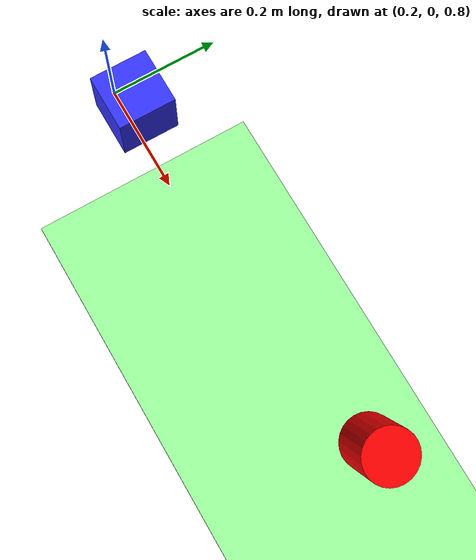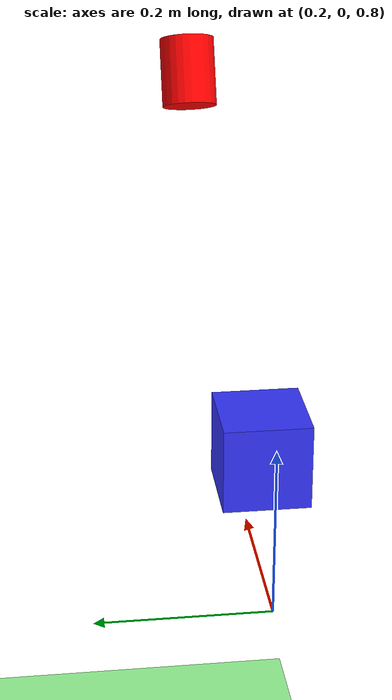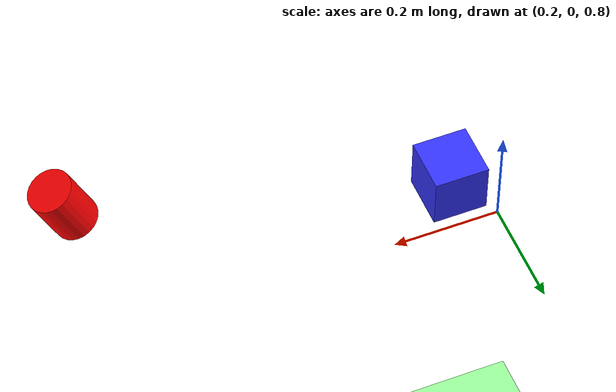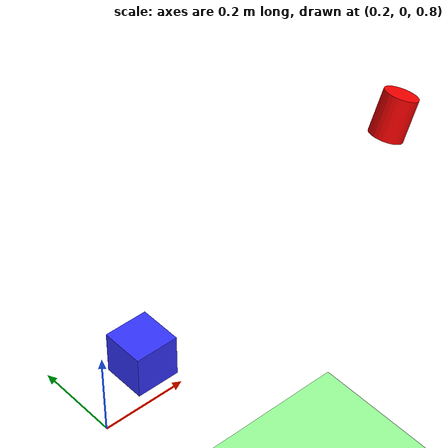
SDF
<sdf version="1.6">
  <world name="default">

    <!-- Plano base -->
    <model name="ground_plane_box">
      <static>true</static>
      <link name="ground_link">
        <pose>0 0 0 0 0 0</pose>
        <collision name="collision">
          <geometry>
            <box>
              <size>10 10 0.01</size>
            </box>
          </geometry>
        </collision>
        <visual name="visual">
          <geometry>
            <box>
              <size>10 10 0.01</size>
            </box>
          </geometry>
          <material>
            <ambient>0.6 1.0 0.6 1</ambient>
            <diffuse>0.6 1.0 0.6 1</diffuse>
          </material>
        </visual>
      </link>
    </model>

    <!-- Cubo de 10x10x10cm -->
    <model name="cube">
      <static>false</static>
      <link name="link">
        <pose>0.3 0 0.95 0 0 0</pose>
        <collision name="collision">
          <geometry>
            <box>
              <size>0.1 0.1 0.1</size>
            </box>
          </geometry>
        </collision>
        <visual name="visual">
          <geometry>
            <box>
              <size>0.1 0.1 0.1</size>
            </box>
          </geometry>
          <material>
            <ambient>0.1 0.1 0.8 1</ambient>
            <diffuse>0.2 0.2 1 1</diffuse>
          </material>
        </visual>
      </link>
    </model>

    <!-- Cámara -->
    <model name="camera">
      <static>true</static>
      <link name="link">
        <pose>1.0 0 1.2 0 -0.423 3.14</pose>
        <!-- Visual para que la cámara sea visible en el mundo -->
        <visual name="camera_body">
          <geometry>
            <cylinder>
              <radius>0.04</radius>
              <length>0.10</length>
            </cylinder>
          </geometry>
          <material>
            <ambient>0.8 0.1 0.1 1</ambient>
            <diffuse>1 0 0 1</diffuse>
          </material>
        </visual>
        <sensor name="camera_sensor" type="camera">
          <camera>
            <horizontal_fov>1.047</horizontal_fov>
            <image>
              <width>640</width>
              <height>480</height>
              <format>R8G8B8</format>
            </image>
            <clip>
              <near>0.1</near>
              <far>100</far>
            </clip>
          </camera>
          <always_on>1</always_on>
          <update_rate>30</update_rate>
          <visualize>true</visualize>
        </sensor>
      </link>
    </model>

  </world>
</sdf>
